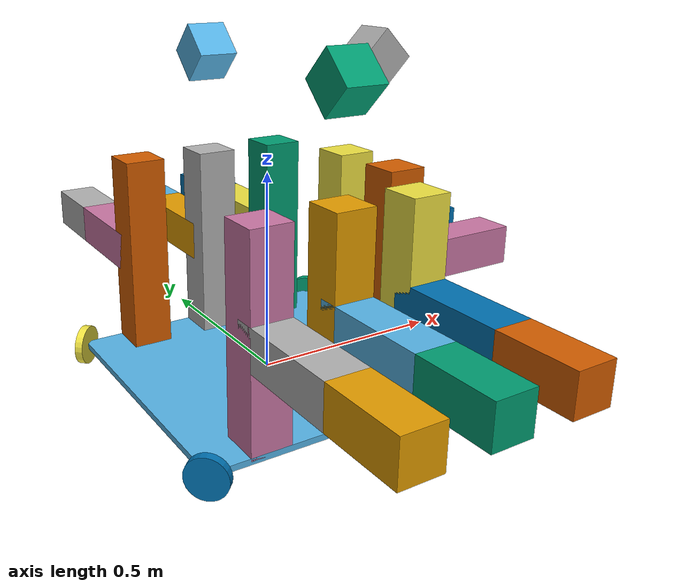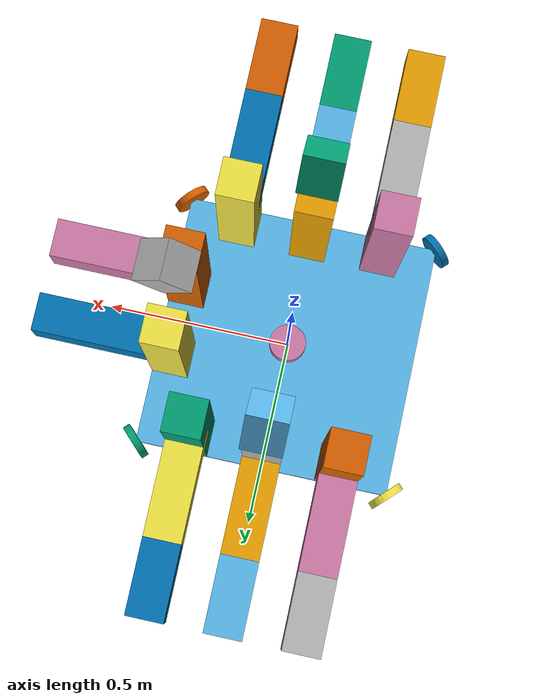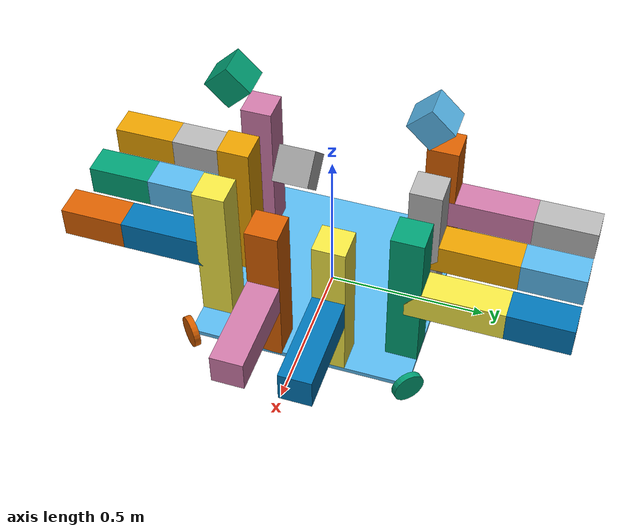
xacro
<?xml version="1.0"?>
<robot xmlns:xacro="http://www.ros.org/wiki/xacro" name="omni_robot">

<!-- 慣性モーメント自動計算用マクロの定義 -->
<!-- ボックス（直方体）用 -->
<xacro:macro name="box_inertial" params="mass x y z *origin">
  <inertial>
    <xacro:insert_block name="origin"/>
    <mass value="${mass}"/>
    <inertia ixx="${mass*(y*y+z*z)/12}" ixy="0" ixz="0"
             iyy="${mass*(x*x+z*z)/12}" iyz="0"
             izz="${mass*(x*x+y*y)/12}"/>
  </inertial>
</xacro:macro>

<!-- シリンダ（円柱）用 -->
<xacro:macro name="cylinder_inertial" params="mass r h *origin">
  <inertial>
    <xacro:insert_block name="origin"/>
    <mass value="${mass}"/>
    <inertia ixx="${mass*(3*r*r+h*h)/12}" ixy="0" ixz="0"
             iyy="${mass*(3*r*r+h*h)/12}" iyz="0"
             izz="${mass*r*r/2}"/>
  </inertial>
</xacro:macro>

<xacro:property name="robot_size" value="0.7" />

<link name="base_footprint"/>

<link name="base_link">
    <visual>
        <geometry>
            <box size="${robot_size} ${robot_size} 0.015"/>
        </geometry>
    </visual>
    <collision>
        <geometry>
            <box size="${robot_size} ${robot_size} 0.015"/>
        </geometry>
    </collision>
    <xacro:box_inertial mass="5.0" x="${robot_size}" y="${robot_size}" z="0.015">
        <origin xyz="0 0 0" rpy="0 0 0" />
    </xacro:box_inertial>
</link>

<joint name="base_joint" type="fixed">
    <parent link="base_footprint"/>
    <child link="base_link"/>
</joint>

<xacro:macro name="wheel" params="prefix angle">
<link name="${prefix}">
    <visual>
        <geometry>
            <cylinder length="0.02" radius="0.05"/>
        </geometry>
    </visual>
    <collision>
        <geometry>
            <cylinder length="0.02" radius="0.05"/>
        </geometry>
    </collision>
    <xacro:cylinder_inertial mass="0.1" r="0.05" h="0.02">
        <origin xyz="0 0 0" rpy="0 0 0" />
    </xacro:cylinder_inertial>
</link>

<!-- オムニホイールの滑り表現用の摩擦設定 -->
<gazebo reference="${prefix}">
    <mu1>1.0</mu1>
    <mu2>0.0</mu2>
    <fdir1>1 0 0</fdir1>
</gazebo>

<joint name="${prefix}_joint" type="continuous">
    <parent link="base_link"/>
    <child link="${prefix}"/>
    <origin rpy="${pi/2} 0 ${pi/2+angle}" xyz="${robot_size/2*1.41421356*cos(angle)} ${robot_size/2*1.41421356*sin(angle)} 0" />
    <axis xyz="0 0 1" />
</joint>

<ros2_control name="${prefix}_shaft_trans" type="system">
  <hardware>
    <plugin>gz_ros2_control/GazeboSimSystem</plugin>
  </hardware>
  <joint name="${prefix}_joint">
    <command_interface name="velocity"/>
    <state_interface name="position" />
    <state_interface name="velocity" />
  </joint>
</ros2_control>
</xacro:macro>

<xacro:wheel prefix="wheel0_motor_shaft" angle="${pi/4}"/>
<xacro:wheel prefix="wheel1_motor_shaft" angle="${3*pi/4}"/>
<xacro:wheel prefix="wheel2_motor_shaft" angle="${5*pi/4}"/>
<xacro:wheel prefix="wheel3_motor_shaft" angle="${7*pi/4}"/>

<link name="lidar_link">
    <visual>
        <geometry>
            <cylinder length="0.05" radius="0.05"/>
        </geometry>
    </visual>
    <collision>
        <geometry>
            <cylinder length="0.05" radius="0.05"/>
        </geometry>
    </collision>
    <xacro:cylinder_inertial mass="0.1" r="0.05" h="0.05">
        <origin xyz="0 0 0" rpy="0 0 0" />
    </xacro:cylinder_inertial>
</link>

<joint name="lidar_link_joint" type="continuous">
    <parent link="base_link"/>
    <child link="lidar_link"/>
    <origin rpy="0 0 0" xyz="0 0 0.02" />
    <axis xyz="0 0 1" />
</joint>

<xacro:macro name="arm" params="prefix xyz rpy">
<link name="${prefix}_base_link">
    <visual>
        <geometry>
            <box size="0.1 0.1 0.5"/>
        </geometry>
    </visual>
</link>

<joint name="${prefix}_base_joint" type="fixed">
    <parent link="base_link"/>
    <child link="${prefix}_base_link"/>
    <origin rpy="${rpy}" xyz="${xyz}" />
</joint>

<xacro:property name="arm_link_length" value="0.3" />
<link name="${prefix}_link">
    <visual>
        <origin rpy="0 0 0" xyz="0 ${arm_link_length/2} 0" />
        <geometry>
            <box size="0.1 ${arm_link_length} 0.1"/>
        </geometry>
    </visual>
    <collision>
        <origin rpy="0 0 0" xyz="0 ${arm_link_length/2} 0" />
        <geometry>
            <box size="0.1 ${arm_link_length} 0.1"/>
        </geometry>
    </collision>
    <xacro:box_inertial mass="0.5" x="0.1" y="${arm_link_length}" z="0.1">
        <origin rpy="0 0 0" xyz="0 ${arm_link_length/2} 0" />
    </xacro:box_inertial>
</link>

<joint name="${prefix}_joint" type="revolute">
    <parent link="${prefix}_base_link"/>
    <child link="${prefix}_link"/>
    <origin rpy="0 0 0" xyz="0 0 0" />
    <axis xyz="1 0 0" />
    <limit effort="1000.0" lower="-0.7" upper="0.7" velocity="0.5"/>
</joint>

<xacro:property name="arm_link2_length" value="0.2" />
<link name="${prefix}_link2">
    <visual>
        <origin rpy="0 0 0" xyz="0 ${arm_link2_length/2} 0" />
        <geometry>
            <box size="0.1 ${arm_link2_length} 0.1"/>
        </geometry>
    </visual>
    <collision>
        <origin rpy="0 0 0" xyz="0 ${arm_link2_length/2} 0" />
        <geometry>
            <box size="0.1 ${arm_link2_length} 0.1"/>
        </geometry>
    </collision>
    <xacro:box_inertial mass="0.3" x="0.1" y="${arm_link2_length}" z="0.1">
        <origin rpy="0 0 0" xyz="0 ${arm_link2_length/2} 0" />
    </xacro:box_inertial>
</link>

<joint name="${prefix}_joint2" type="revolute">
    <parent link="${prefix}_link"/>
    <child link="${prefix}_link2"/>
    <origin rpy="0 0 0" xyz="0 ${arm_link_length} 0" />
    <axis xyz="1 0 0" />
    <limit effort="1000.0" lower="-0.7" upper="0.7" velocity="0.5"/>
</joint>
</xacro:macro>

<xacro:arm prefix="arm1" xyz="0 0.3 0.25" rpy="0 0 0"/>
<xacro:arm prefix="arm2" xyz="0.2 0.3 0.25" rpy="0 0 0"/>
<xacro:arm prefix="arm3" xyz="-0.2 0.3 0.25" rpy="0 0 0"/>
<xacro:arm prefix="arm4" xyz="0 -0.3 0.25" rpy="0 0 ${pi}"/>
<xacro:arm prefix="arm5" xyz="0.2 -0.3 0.25" rpy="0 0 ${pi}"/>
<xacro:arm prefix="arm6" xyz="-0.2 -0.3 0.25" rpy="0 0 ${pi}"/>

<link name="camera_link">
    <visual>
        <geometry>
            <box size="0.1 0.1 0.1"/>
        </geometry>
    </visual>
</link>

<joint name="camera_joint" type="fixed">
    <parent link="base_link"/>
    <child link="camera_link"/>
    <origin rpy="${-pi/4} 0 0" xyz="0 0.3 0.75" />
</joint>

<link name="camera_link2">
    <visual>
        <geometry>
            <box size="0.1 0.1 0.1"/>
        </geometry>
    </visual>
</link>

<joint name="camera_joint2" type="fixed">
    <parent link="base_link"/>
    <child link="camera_link2"/>
    <origin rpy="${-pi/4} 0 ${pi}" xyz="0 -0.3 0.75" />
</joint>

<xacro:macro name="gather" params="prefix xyz">
<link name="${prefix}_base_link">
    <visual>
        <geometry>
            <box size="0.1 0.1 0.5"/>
        </geometry>
    </visual>
</link>

<joint name="${prefix}_base_joint" type="fixed">
    <parent link="base_link"/>
    <child link="${prefix}_base_link"/>
    <origin rpy="0 0 0" xyz="${xyz}" />
</joint>

<link name="${prefix}_link">
    <visual>
        <geometry>
            <box size="0.3 0.1 0.1"/>
        </geometry>
    </visual>
    <collision>
        <geometry>
            <box size="0.3 0.1 0.1"/>
        </geometry>
    </collision>
    <xacro:box_inertial mass="0.3" x="0.3" y="0.1" z="0.1">
        <origin xyz="0 0 0" rpy="0 0 0" />
    </xacro:box_inertial>
</link>

<joint name="${prefix}_joint" type="prismatic">
    <parent link="${prefix}_base_link"/>
    <child link="${prefix}_link"/>
    <origin rpy="0 0 0" xyz="0.2 0 0" />
    <axis xyz="0 0 1" />
    <limit effort="1000.0" lower="-0.2" upper="0.2" velocity="0.5"/>
</joint>
</xacro:macro>

<xacro:gather prefix="gather1" xyz="0.3 0.1 0.25"/>
<xacro:gather prefix="gather2" xyz="0.3 -0.1 0.25"/>

<link name="camera_link3">
    <visual>
        <geometry>
            <box size="0.1 0.1 0.1"/>
        </geometry>
    </visual>
</link>

<joint name="camera_joint3" type="fixed">
    <parent link="base_link"/>
    <child link="camera_link3"/>
    <origin rpy="${-pi/4} 0 ${-pi/2}" xyz="0.3 0 0.75" />
</joint>
  <gazebo>
    <plugin filename="gz_ros2_control-system" name="gz_ros2_control::GazeboSimROS2ControlPlugin">
      <robotNamespace>/odm_robot</robotNamespace>
      <parameters>$(find summer_robot_ros2_control)/config/ros2_control.yaml</parameters>
    </plugin>
  </gazebo>
</robot>
